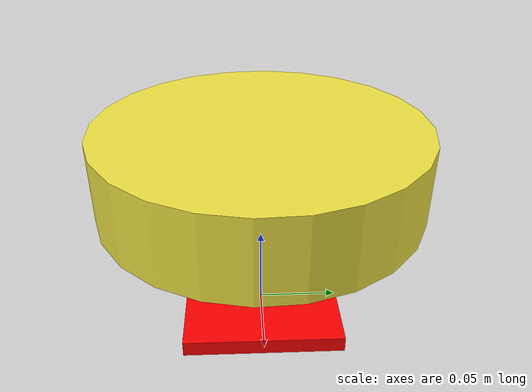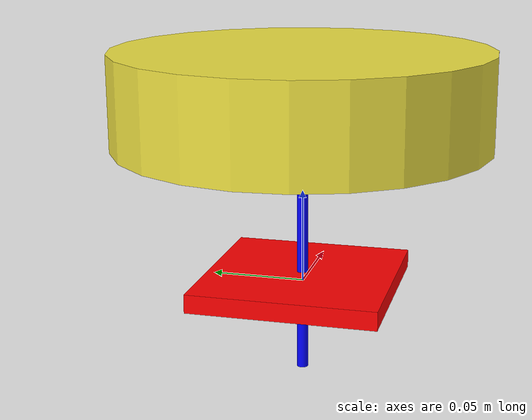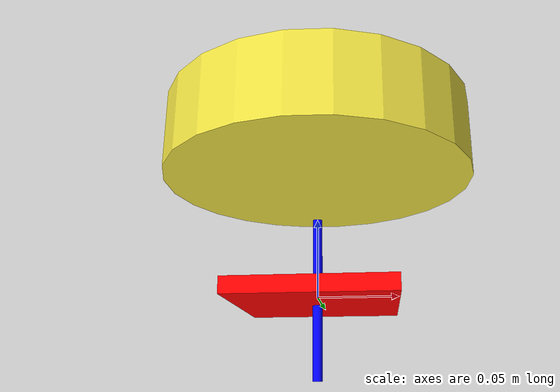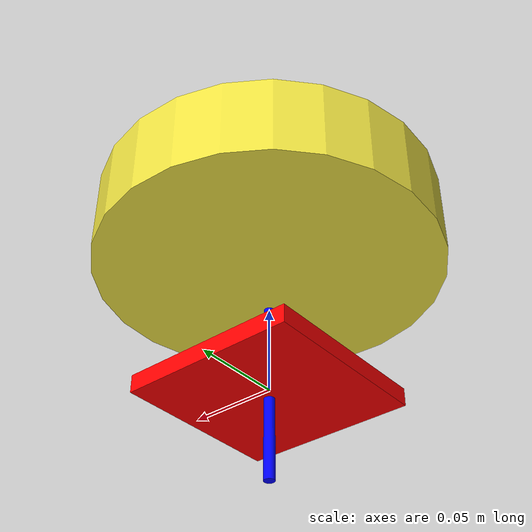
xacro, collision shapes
<?xml version="1.0"?>
<robot xmlns:xacro="http://ros.org/wiki/xacro" name="crank_lidar">

    <!-- Defining the colors used in this robot -->
    <material name="Black">
        <color rgba="0 0 0 1"/>
    </material>

    <material name="White">
        <color rgba="1 1 1 1"/>
    </material>

    <material name="Blue">
        <color rgba="0 0 1 1"/>
    </material>

    <material name="Red">
        <color rgba="1 0 0 1"/>
    </material>

    <!-- Constants -->
    <xacro:property name="M_PI" value="3.14159"/>

    <!-- link1 properties -->
    <xacro:property name="link1_width" value="0.003" />
    <xacro:property name="link1_len" value="0.2" />

    <!-- inertial matrix -->
    <xacro:macro name="inertial_matrix" params="mass">
        <inertial>
            <mass value="${mass}" />
            <inertia ixx="1.0" ixy="0.0" ixz="0.0" iyy="0.5" iyz="0.0" izz="1.0" />
        </inertial>
    </xacro:macro>

    <link name="world"/>

    <!-- base_link -->
    <link name="base_link">
        <visual>
            <origin xyz="0 0 0" rpy="0 0 0" />
            <geometry>
                <box size="0.1 0.1 0.04" />
            </geometry>
            <material name="Red" />
        </visual>
        <collision>
            <origin xyz="0 0 0" rpy="0 0 0" />
            <geometry>
                <box size="0.1 0.1 0.01" />
            </geometry>
        </collision>
        <xacro:inertial_matrix mass="1"/>
    </link>

    <gazebo reference="base_link">
        <material>Gazebo/Red</material>
    </gazebo>

    <joint name="fixed" type="fixed">
        <parent link="world"/>
        <child link="base_link"/>
    </joint>

    <joint name="joint1" type="fixed">
        <parent link="base_link"/>
        <child link="link1"/>
        <origin xyz="0.1 0 0" rpy="0 0 0" />
    </joint>

    <!-- link 1 -->
    <link name="link1" >
        <visual>
            <origin xyz="-${link1_len/2} 0 0" rpy="0 0 0" />
            <geometry>
                <cylinder radius="${link1_width}" length="${link1_len}"/>
            </geometry>
            <material name="Blue" />
        </visual>
        <collision>
            <!-- Attention: the axis -->
            <origin xyz="-${link1_len/2} 0 0" rpy="0 0 0" />
            <geometry>
                <cylinder radius="${link1_width}" length="${link1_len/2}"/>
            </geometry>
        </collision>
        <xacro:inertial_matrix mass="1"/>
    </link>

    <xacro:include filename="$(find livox_laser_simulation)/urdf/livox_mid.urdf.xacro"/>
    <xacro:Livox_Mid40 name="livox"/>

    <joint name="livox_base_joint" type="fixed">
        <parent link="link1"/>
        <child link="livox_base"/>
        <origin rpy="0 0 -0.6"
                xyz="-0.1 0 ${link1_len/2}"/>
    </joint>

    <gazebo reference="link1">
        <material>Gazebo/Blue</material>
    </gazebo>

</robot>

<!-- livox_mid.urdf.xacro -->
<robot xmlns:xacro="http://ros.org/wiki/xacro">

  <xacro:macro name="null_inertial">
    <inertial>
      <mass value="0.1"/>
    <inertia ixx="${(0.83 * (3.0*0.0516*0.0516 + 0.0717*0.0717)) / 12.0}" ixy="0" ixz="0"
          iyy="${(0.83 * (3.0*0.0516*0.0516 + 0.0717*0.0717)) / 12.0}" iyz="0"
          izz="${0.5 * 0.83 * (0.0516*0.0516)}"/>
    </inertial>
  </xacro:macro>

  <xacro:macro name="Livox_Mid_gazebo_sensor" params="visualize:=True update_rate:=10 min_range:=0.0 max_range:=30.0 resolution:=0.002 noise_mean:=0.0 noise_stddev:=0.01 topic_prefix:=livox_lidar/ name:=livox samples:=500 num_double_ellipses:=5 rotation_increment:=0.1">
    <gazebo reference="${name}">
      <sensor type="ray" name="laser_${name}">
        <pose>0 0 0 0 0 0</pose>
        <visualize>${visualize}</visualize>
        <update_rate>${update_rate}</update_rate>
        <!-- This ray plgin is only for visualization. -->
        <ray>
          <scan>
            <horizontal>
              <samples>3</samples>
              <resolution>1</resolution>
              <min_angle>0.33</min_angle>
              <max_angle>-0.33</max_angle>
            </horizontal>
            <vertical>
              <samples>1</samples>
              <resolution>1</resolution>
              <min_angle>0</min_angle>
              <max_angle>0</max_angle>
            </vertical>
          </scan>
          <range>
            <min>${min_range}</min>
            <max>${max_range}</max>
            <resolution>${resolution}</resolution>
          </range>
          <noise>
            <type>gaussian</type>
            <mean>${noise_mean}</mean>
            <stddev>${noise_stddev}</stddev>
          </noise>
        </ray>
        <plugin name="gazebo_ros_laser_controller" filename="libgazebo_laser_livox.so">
          <visualize>${visualize}</visualize>
          <frameName>${name}</frameName>
          <topicName>${topic_prefix}${name}</topicName>
          <updateRate>${update_rate}</updateRate>
          <samples>${samples}</samples>
          <numDoubleEllipses>${num_double_ellipses}</numDoubleEllipses>
          <minRange>${min_range}</minRange>
          <maxRange>${max_range}</maxRange>
          <rotationIncrement>${rotation_increment}</rotationIncrement>
          <interpolationPoints>10</interpolationPoints>
          <maxInterpolationDistance>2.0</maxInterpolationDistance>
        </plugin>
      </sensor>
    </gazebo>
  </xacro:macro>

  <!-- ============================================= Livox_Mid40 macro ============================================= -->
  <xacro:macro name="Livox_Mid40" params="visualize:=True update_rate:=10 min_range:=0.0 max_range:=30.0 resolution:=0.002 noise_mean:=0.0 noise_stddev:=0.01 topic_prefix:=livox_lidar/ name:=livox samples:=500 num_double_ellipses:=5 rotation_increment:=0.1">
    <link name="${name}_base">
      <xacro:null_inertial/>
      <visual>
        <origin xyz="0.05 0 0.05" rpy="0 0 0"/>
        <geometry>
          <mesh filename="package://livox_simulation/meshes/livox_mid40.dae">
          </mesh>
        </geometry>
      </visual>

      <collision>
          <origin xyz="0 0 0" rpy="0 0 0" />
          <geometry>
            <cylinder length="0.05" radius="0.1" />
          </geometry>
      </collision>
    </link>

    <link name="${name}">
      <xacro:null_inertial/>
    </link>

    <joint name="${name}_to_${name}_base_joint" type="fixed">
      <parent link="${name}_base"/>
      <child link="${name}"/>
      <origin rpy="0 0 0" xyz="0.049 0.0 0.0457"/>
    </joint>

    <xacro:Livox_Mid_gazebo_sensor name="${name}" visualize="${visualize}" min_range="${min_range}" max_range="${max_range}" resolution="${resolution}" samples="${samples}" num_double_ellipses="${num_double_ellipses}" update_rate="${update_rate}" noise_mean="${noise_mean}" noise_stddev="${noise_stddev}" topic_prefix="${topic_prefix}" rotation_increment="${rotation_increment}"/>
  </xacro:macro>

  <!-- ============================================= Livox_Mid100 macro ============================================= -->
  <xacro:macro name="Livox_Mid100" params="name">

    <link name="${name}_center_base">
      <xacro:null_inertial/>
    </link>

    <link name="${name}_center">
      <xacro:null_inertial/>
    </link>

    <joint name="${name}_center_to_${name}_base_joint" type="fixed">
      <parent link="${name}_center_base"/>
      <child link="${name}_center"/>
      <origin rpy="0 0 0" xyz="0.07 0.0 0.0397"/>
    </joint>

    <link name="${name}_left_base">
      <xacro:null_inertial/>
    </link>

    <link name="${name}_left">
      <xacro:null_inertial/>
    </link>

    <joint name="${name}_left_to_${name}_base_joint" type="fixed">
      <parent link="${name}_left_base"/>
      <child link="${name}_left"/>
      <origin rpy="0 0 0.5235987756" xyz="0.039405 0.087381 0.0397"/>
    </joint>

    <link name="${name}_right_base">
      <xacro:null_inertial/>
    </link>

    <link name="${name}_right">
      <xacro:null_inertial/>
    </link>

    <joint name="${name}_right_to_${name}_base_joint" type="fixed">
      <parent link="${name}_right_base"/>
      <child link="${name}_right"/>
      <origin rpy="0 0 -0.5235987756" xyz="0.039405 -0.087381 0.0397"/>
    </joint>

    <xacro:Livox_Mid_gazebo_sensor name="${name}_left"/>
    <xacro:Livox_Mid_gazebo_sensor name="${name}_center"/>
    <xacro:Livox_Mid_gazebo_sensor name="${name}_right"/>
  </xacro:macro>
</robot>
